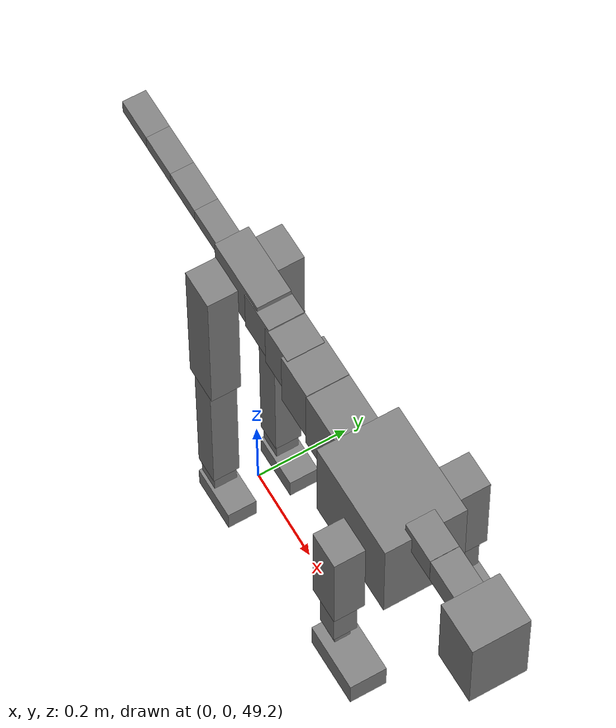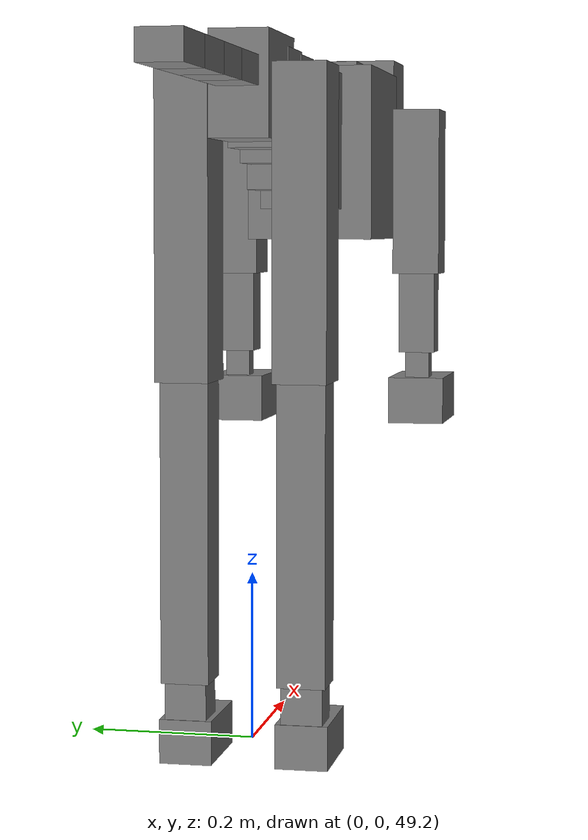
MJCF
<mujoco model="dog">

    <default>
        <joint armature="0.02" stiffness="1" damping="0.2" limited="true"/>
        <geom condim="3" friction="1 0.05 0.05" margin="0.01"/>
        <motor ctrllimited="true" ctrlrange="-1.0 1.0" forcelimited="true" gear="50"/>
    </default>

    <compiler inertiafromgeom="true" angle="radian"/>

    <option timestep="0.016" iterations="50" tolerance="1e-10" solver="Newton" jacobian="dense" cone="pyramidal"/>

    <size nconmax="20000" njmax="60000" nstack="5000000"/>
    <visual>
        <map force="0.1" zfar="30"/>
        <rgba haze="0.15 0.25 0.35 1"/>
        <quality shadowsize="2048"/>
        <global offwidth="800" offheight="800"/>
    </visual>

    <asset>
        <texture type="skybox" builtin="gradient" rgb1="0.3 0.5 0.7" rgb2="0 0 0" width="512" height="512"/>
        <texture name="texplane" type="2d" builtin="checker" rgb1=".2 .3 .4" rgb2=".1 0.15 0.2" width="512" height="512"
                 mark="cross" markrgb=".8 .8 .8"/>
        <texture name="texgeom" type="cube" builtin="flat" mark="cross" width="127" height="1278" rgb1="0.8 0.6 0.4"
                 rgb2="0.8 0.6 0.4" markrgb="1 1 1" random="0.01"/>

        <material name="matplane" reflectance="0.3" texture="texplane" texrepeat="1 1" texuniform="true"/>
        <material name="matgeom" texture="texgeom" texuniform="true" rgba="0.8 0.6 .4 1"/>
    </asset>

    <worldbody>
        <geom name="floor" pos="0 0 0" size="0 0 .25" type="plane" material="matplane" condim="3"/>

        <light directional="false" diffuse=".2 .2 .2" specular="0 0 0" pos="0 0 5" dir="0 0 -1" castshadow="false"/>
        <light mode="targetbodycom" target="torso" directional="false" diffuse=".8 .8 .8" specular="0.3 0.3 0.3"
               pos="0 0 4.0" dir="0 0 -1"/>

        <body name="root" pos="0 0 50">
            <freejoint name="root_1"/>
            <geom type="box" pos="0 0 -0.02" size="0.0774  0.0358  0.063" density="2030"/>

            <body name="spine1" pos="0.054 0 0">
                <joint name="spine1_y" axis="0 1 0" range="0 0.7" limited="true"/>
                <geom type="box" pos="0.02375 0 -0.03" size="0.04375  0.0375  0.05985" density="2030"/>

                <body name="spine2" pos="0.0612 0 0">
                    <joint name="spine2_y" axis="0 1 0" range="-0.15 0.15" limited="true"/>
                    <geom type="box" pos="0.03555  0  -0.04" size="0.04055  0.039  0.06615" density="2030"/>

                    <body name="spine3" pos="0.0730 0 0">
                        <joint name="spine3_y" axis="0 1 0" range="-0.15 0.15" limited="true"/>
                        <geom type="box" pos="0.03555  0  -0.057" size="0.04555  0.0445  0.081" density="2030"/>

                        <body name="spine4" pos="0.0780 0 0">
                            <joint name="spine4_y" axis="0 1 0" range="-0.15 0.15" limited="true"/>
                            <geom type="box" pos="0.05265  0  -0.07" size="0.05265  0.045  0.09135" density="2030"/>

                            <body name="torso" pos="0.1082 0 0">
                                <joint name="torso_y" axis="0 1 0" range="-0.15 0.15" limited="true"/>
                                <geom type="box" pos="0.11925  0  -0.085" size="0.11925  0.085  0.11745"
                                      density="2030"/>

                                <body name="neck1" pos="0.2160  0   0.0180">
                                    <joint name="neck1_y" axis="0 1 0" range="-1.2  -1" limited="true"/>
                                    <geom type="box" pos="0.0423  0  0" size="0.0423  0.03  0.036" density="2325"/>

                                    <body name="neck2" pos="0.0853  0  0">
                                        <joint name="neck2_y" axis="0 1 0" range="0.1  0" limited="true"/>
                                        <geom type="box" pos="0.0423  0  0" size="0.0423  0.03  0.036" density="2325"/>

                                        <body name="head" pos="0.0853  0  0">
                                            <joint name="head_y" axis="0 1 0" range="-0.3  -0.2" limited="true"/>
                                            <geom type="box" pos="0.0531  0  -0.055" size="0.0531  0.06  0.1044"
                                                  density="4030"/>

                                        </body>
                                    </body>
                                </body>

                                <body name="front_shoulder" pos="0.156  0   -0.0480">
                                    <joint name="front_shoulder_y" axis="0 1 0" range="-1 1.5" limited="true"/>
                                    <geom type="box" pos="0 0.13 -0.0883" size="0.0378  0.0323  0.1150" density="1158"/>
                                    <geom type="box" pos="0 -0.13 -0.0883" size="0.0378  0.0323  0.1150"
                                          density="1158"/>

                                    <body name="front_elbow" pos="0  0  -0.1766">
                                        <joint name="front_elbow_y" axis="0 1 0" range="-2 0" limited="true"/>
                                        <geom type="box" pos="0 0.13 -0.0691" size="0.0244  0.0250  0.0691"
                                              density="1081"/>
                                        <geom type="box" pos="0 -0.13 -0.0691" size="0.0244  0.0250  0.0691"
                                              density="1081"/>

                                        <body name="front_wrist" pos="0  0  -0.1382">
                                            <joint name="front_wrist_y" axis="0 1 0" range="-0.2 0" limited="true"/>
                                            <geom type="box" pos="0 0.13 -0.0254" size="0.0151  0.0168  0.0385"
                                                  density="1664"/>
                                            <geom type="box" pos="0 -0.13 -0.0254" size="0.0151  0.0168  0.0385"
                                                  density="1664"/>

                                            <body name="front_finger_end" pos="0  0  -0.0507">
                                                <joint name="front_finger_y" axis="0 1 0" range="-0.4 1"
                                                       limited="true"/>
                                                <geom type="box" pos="0.0385  0.13  -0.0172"
                                                      size="0.0706  0.0385  0.0322" density="1515"/>
                                                <geom type="box" pos="0.0385  -0.13  -0.0172"
                                                      size="0.0706  0.0385  0.0322" density="1515"/>

                                            </body>

                                        </body>
                                    </body>
                                </body>

                            </body>
                        </body>
                    </body>
                </body>
            </body>

            <body name="back_hip" pos="-0.03 0 -0.018">
                <joint name="back_hip_y" axis="0 1 0" range="-1.5 0.3" limited="true"/>
                <geom type="box" pos="0 0.07 -0.1633" size="0.0408  0.0320  0.1861" density="1154"/>
                <geom type="box" pos="0 -0.07 -0.1633" size="0.0408  0.0320  0.1861" density="1154"/>

                <body name="back_knee" pos="0  0  -0.3265">
                    <joint name="back_knee_y" axis="0 1 0" range="0 2.8" limited="true"/>
                    <geom type="box" pos="0 0.07 -0.1830" size="0.0293  0.0288  0.1985" density="1227"/>
                    <geom type="box" pos="0 -0.07 -0.1830" size="0.0293  0.0288  0.1985" density="1227"/>

                    <body name="back_ankle" pos="0  0  -0.3659">
                        <joint name="back_ankle_y" axis="0 1 0" range="-2.2 0" limited="true"/>
                        <geom type="box" pos="0 0.07 -0.0374" size="0.0248  0.0248  0.0486" density="1284"/>
                        <geom type="box" pos="0 -0.07 -0.0374" size="0.0248  0.0248  0.0486" density="1284"/>

                        <body name="back_toe_end" pos="0  0  -0.0747">
                            <joint name="back_toe_y" axis="0 1 0" range="-0.4 1" limited="true"/>
                            <geom type="box" pos="0.0316  0.07  -0.0115" size="0.0579  0.0316  0.0265" density="1515"/>
                            <geom type="box" pos="0.0316  -0.07  -0.0115" size="0.0579  0.0316  0.0265" density="1515"/>

                        </body>
                    </body>
                </body>
            </body>

            <body name="tail1" pos="-0.074 0 -0.006">
                <joint name="tail1_y" axis="0 1 0" range="-0.2 0.2" limited="true"/>
                <geom type="box" pos="-0.0536  0  0" size="0.045  0.025  0.0175" density="1587"/>

                <body name="tail2" pos="-0.09 0 0">
                    <joint name="tail2_y" axis="0 1 0" range="-0.2 0.2" limited="true"/>
                    <geom type="box" pos="-0.0536  0  0" size="0.045  0.025  0.0175" density="1587"/>

                    <body name="tail3" pos="-0.09 0 0">
                        <joint name="tail3_y" axis="0 1 0" range="-0.2 0.2" limited="true"/>
                        <geom type="box" pos="-0.0536  0  0" size="0.045  0.025  0.0175" density="1587"/>

                        <body name="tail4" pos="-0.09 0 0">
                            <joint name="tail4_y" axis="0 1 0" range="-0.2 0.2" limited="true"/>
                            <geom type="box" pos="-0.0536  0  0" size="0.045  0.025  0.0175" density="1587"/>

                        </body>
                    </body>
                </body>
            </body>
        </body>
    </worldbody>

    <actuator>
        <motor joint="spine1_y" forcerange="-150 150     "/>
        <motor joint="spine2_y" forcerange="-150 150     "/>
        <motor joint="spine3_y" forcerange="-150 150     "/>
        <motor joint="spine4_y" forcerange="-150 150     "/>
        <motor joint="torso_y" forcerange="-150 150     "/>
        <motor joint="neck1_y" forcerange="-100 100       "/>
        <motor joint="neck2_y" forcerange="-100 100       "/>
        <motor joint="head_y" forcerange="-150 150       "/>
        <motor joint="front_shoulder_y" forcerange="-150.84 164.65"/>
        <motor joint="front_elbow_y" forcerange="-153.79 127.97"/>
        <motor joint="front_wrist_y" forcerange="-59.12 75.39"/>
        <motor joint="front_finger_y" forcerange="-92.74 72.70"/>
        <motor joint="back_hip_y" forcerange="-277.84 348.90"/>
        <motor joint="back_knee_y" forcerange="-376.53 242.88"/>
        <motor joint="back_angle_y" forcerange="-197.50 99.44"/>
        <motor joint="back_toe_y" forcerange="-47.41 125.31"/>
        <motor joint="tail1_y" forcerange="-50 50     "/>
        <motor joint="tail2_y" forcerange="-50 50     "/>
        <motor joint="tail3_y" forcerange="-50 50     "/>
        <motor joint="tail4_y" forcerange="-50 50     "/>
    </actuator>
</mujoco>
